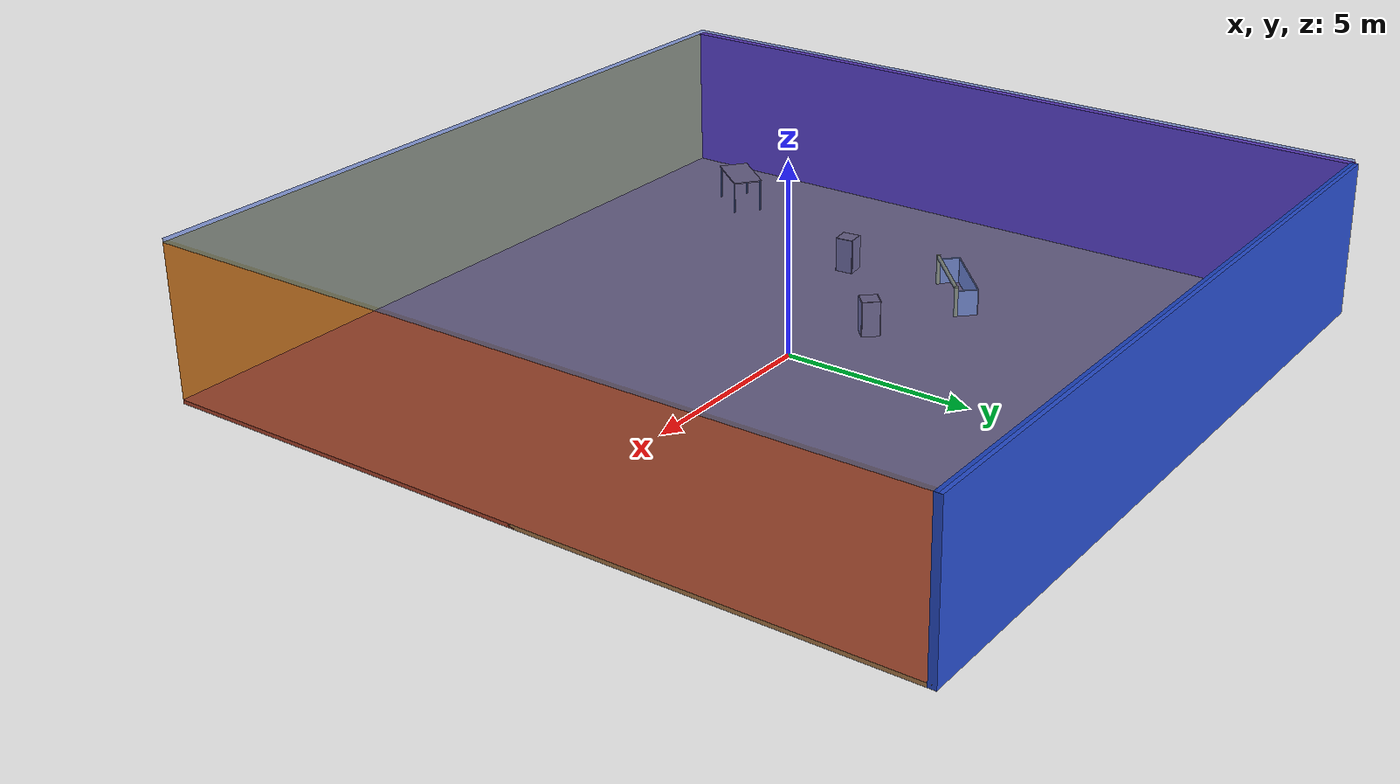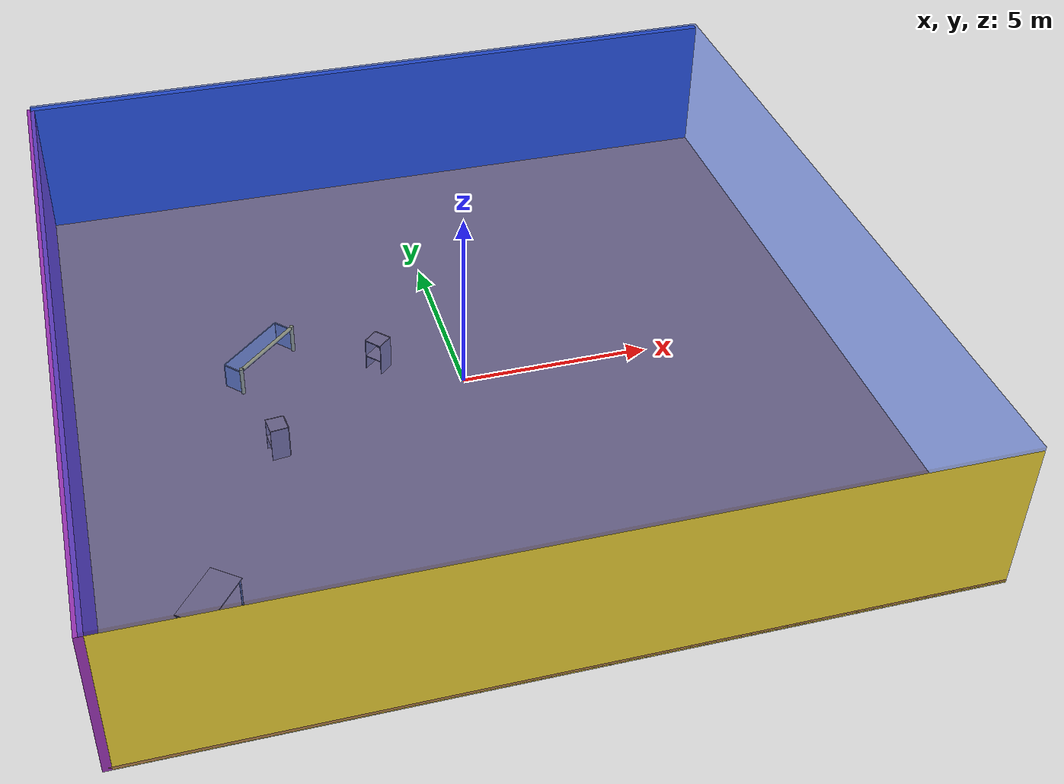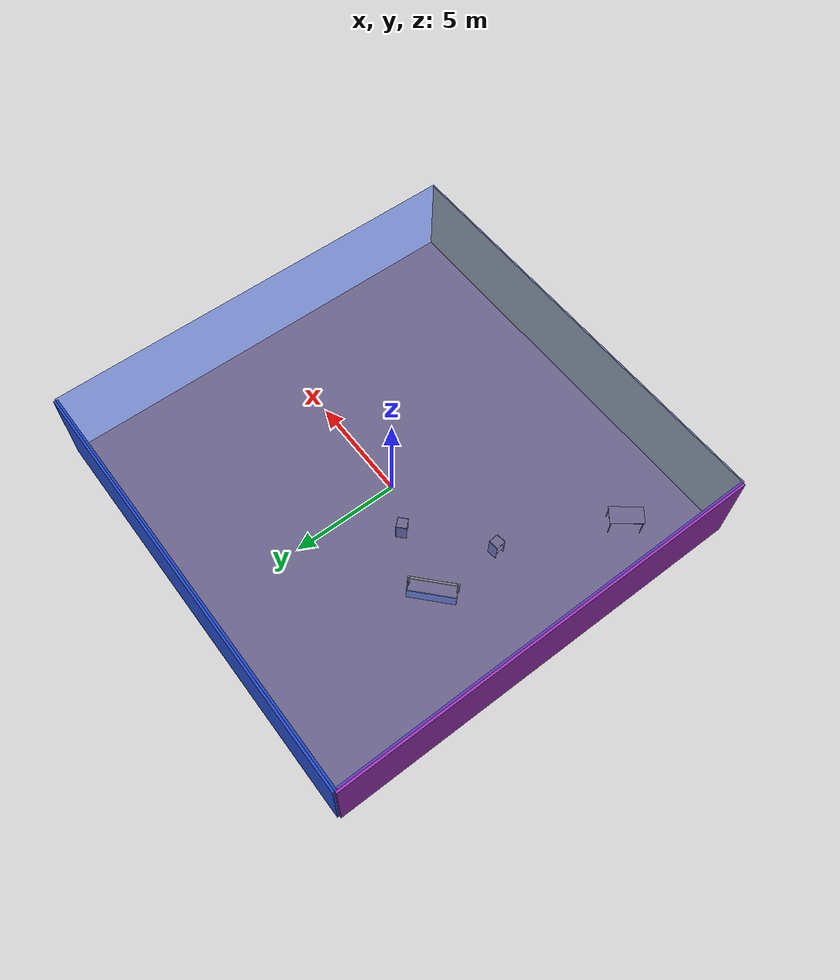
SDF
<sdf version="1.4">
 <world name="default">
  <physics type="ode">
   <max_step_size>0.001</max_step_size>
   <real_time_factor>1</real_time_factor>
   <real_time_update_rate>1000</real_time_update_rate>
   <gravity>0 0 -9.8</gravity>
  </physics>
  <scene><ambient>0.4 0.4 0.4 1</ambient><background>0.7 0.7 0.7 1</background><shadows>1</shadows></scene>
  <model name="Surrounding">
   <static>1</static>
   <link name="Ceiling">
    <collision name="Ceiling_Collision"><geometry><box><size>20 20 0.1</size></box></geometry></collision>
    <visual name="Ceiling_Visual">
     <geometry><box><size>20 20 0.1</size></box></geometry>
     <material>
      <script><uri>file://media/materials/scripts/gazebo.material</uri><name>Gazebo/BlueTransparent</name></script>
     </material>
    </visual>
    <pose>0 0 4.05 0 0 0</pose>
   </link>
   <link name="Wall_South">
    <collision name="Wall_South_Collision">
     <geometry><box><size>20 0 4</size></box></geometry>
     <pose>0 0 2 0 -0 0</pose>
    </collision>
    <visual name="Wall_South_Visual">
     <pose>0 0 2 0 -0 0</pose>
     <geometry><box><size>20 0 4</size></box></geometry>
     <material>
      <script><uri>file://media/materials/scripts/gazebo.material</uri><name>Gazebo/ZincYellow</name></script>
     </material>
    </visual>
    <velocity_decay><linear>0</linear><angular>0</angular></velocity_decay>
    <pose>0 -10 0 0 -0 0</pose>
   </link>
   <link name="Wall_East">
    <collision name="Wall_21_Collision">
     <geometry><box><size>20 0 4</size></box></geometry>
     <pose>0 0 2 0 -0 0</pose>
    </collision>
    <visual name="Wall_21_Visual">
     <pose>0 0 2 0 -0 0</pose>
     <geometry><box><size>20 0 4</size></box></geometry>
     <material>
      <script><uri>file://media/materials/scripts/gazebo.material</uri><name>Gazebo/RedTransparent</name></script>
     </material>
    </visual>
    <velocity_decay><linear>0</linear><angular>0</angular></velocity_decay>
    <pose>10 0 0 0 -0 1.5708</pose>
   </link>
   <link name="Wall_North">
    <collision name="Wall_22_Collision">
     <geometry><box><size>20 0.2 4</size></box></geometry>
     <pose>0 0 2 0 -0 0</pose>
    </collision>
    <visual name="Wall_22_Visual">
     <pose>0 0 2 0 -0 0</pose>
     <geometry><box><size>20 0.2 4</size></box></geometry>
     <material>
      <script><uri>file://media/materials/scripts/gazebo.material</uri><name>Gazebo/BlueGlow</name></script>
     </material>
    </visual>
    <velocity_decay><linear>0</linear><angular>0</angular></velocity_decay>
    <pose>0 10 0 0 -0 0</pose>
   </link>
   <link name="Wall_West">
    <collision name="Wall_23_Collision">
     <geometry><box><size>20 0.2 4</size></box></geometry>
     <pose>0 0 2 0 -0 0</pose>
    </collision>
    <visual name="Wall_23_Visual">
     <pose>0 0 2 0 -0 0</pose>
     <geometry><box><size>20 0.2 4</size></box></geometry>
     <material>
      <script><uri>file://media/materials/scripts/gazebo.material</uri><name>Gazebo/Purple</name></script>
     </material>
    </visual>
    <velocity_decay><linear>0</linear><angular>0</angular></velocity_decay>
    <pose>-10 0 0 0 0 -1.5708</pose>
   </link>
   <link name="Ground_link">
    <collision name="collision">
     <pose>0 0 .05 0 -0 0</pose>
     <geometry><box><size>20 20 0.1</size></box></geometry>
    </collision>
    <visual name="visual">
     <pose>0 0 .05 0 -0 0</pose>
     <geometry><box><size>20 20 0.1</size></box></geometry>
     <material>
      <script><uri>file://media/materials/scripts/gazebo.material</uri><name>Gazebo/WoodFloor</name></script>
     </material>
    </visual>
   </link>
   <static>1</static>
  </model>
  <spherical_coordinates>
   <surface_model>EARTH_WGS84</surface_model>
   <latitude_deg>0</latitude_deg>
   <longitude_deg>0</longitude_deg>
   <elevation>0</elevation>
   <heading_deg>0</heading_deg>
  </spherical_coordinates>
  <light name="lightball_0" type="diffuse">
   <diffuse>0.8 0.8 0.8 1</diffuse>
   <specular>0.2 0.2 0.2 1</specular>
   <attenuation>
    <range>100</range>
    <constant>0.7</constant>
    <linear>0.01</linear>
    <quadratic>0.001</quadratic>
   </attenuation>
   <direction>-0.5 0.1 -0.9</direction>
   <pose>6.97004971713 0.104550637953 1.76016843005 0 0 0</pose>
  </light>
  <light name="lightball_1" type="diffuse">
   <diffuse>0.8 0.8 0.8 1</diffuse>
   <specular>0.2 0.2 0.2 1</specular>
   <attenuation>
    <range>100</range>
    <constant>0.7</constant>
    <linear>0.01</linear>
    <quadratic>0.001</quadratic>
   </attenuation>
   <direction>-0.5 0.1 -0.9</direction>
   <pose>-3.08640535014 -1.04521309431 0.620833237216 0 0 0</pose>
  </light>
  <light name="lightball_2" type="diffuse">
   <diffuse>0.8 0.8 0.8 1</diffuse>
   <specular>0.2 0.2 0.2 1</specular>
   <attenuation>
    <range>100</range>
    <constant>0.7</constant>
    <linear>0.01</linear>
    <quadratic>0.001</quadratic>
   </attenuation>
   <direction>-0.5 0.1 -0.9</direction>
   <pose>7.09173519377 1.63186779395 2.85662191002 0 0 0</pose>
  </light>
  <light name="lightball_3" type="diffuse">
   <diffuse>0.8 0.8 0.8 1</diffuse>
   <specular>0.2 0.2 0.2 1</specular>
   <attenuation>
    <range>100</range>
    <constant>0.7</constant>
    <linear>0.01</linear>
    <quadratic>0.001</quadratic>
   </attenuation>
   <direction>-0.5 0.1 -0.9</direction>
   <pose>7.83066384528 -1.17430257665 1.09068386536 0 0 0</pose>
  </light>
  <light name="lightball_4" type="diffuse">
   <diffuse>0.8 0.8 0.8 1</diffuse>
   <specular>0.2 0.2 0.2 1</specular>
   <attenuation>
    <range>100</range>
    <constant>0.7</constant>
    <linear>0.01</linear>
    <quadratic>0.001</quadratic>
   </attenuation>
   <direction>-0.5 0.1 -0.9</direction>
   <pose>-9.59217002966 4.03362644733 2.7323422098 0 0 0</pose>
  </light>
  <light name="lightball_5" type="diffuse">
   <diffuse>0.8 0.8 0.8 1</diffuse>
   <specular>0.2 0.2 0.2 1</specular>
   <attenuation>
    <range>100</range>
    <constant>0.7</constant>
    <linear>0.01</linear>
    <quadratic>0.001</quadratic>
   </attenuation>
   <direction>-0.5 0.1 -0.9</direction>
   <pose>9.46183404939 3.4712810465 1.50822020759 0 0 0</pose>
  </light>
  <light name="lightball_6" type="diffuse">
   <diffuse>0.8 0.8 0.8 1</diffuse>
   <specular>0.2 0.2 0.2 1</specular>
   <attenuation>
    <range>100</range>
    <constant>0.7</constant>
    <linear>0.01</linear>
    <quadratic>0.001</quadratic>
   </attenuation>
   <direction>-0.5 0.1 -0.9</direction>
   <pose>6.02795566976 -9.14421639926 1.45208709581 0 0 0</pose>
  </light>
  <light name="lightball_7" type="diffuse">
   <diffuse>0.8 0.8 0.8 1</diffuse>
   <specular>0.2 0.2 0.2 1</specular>
   <attenuation>
    <range>100</range>
    <constant>0.7</constant>
    <linear>0.01</linear>
    <quadratic>0.001</quadratic>
   </attenuation>
   <direction>-0.5 0.1 -0.9</direction>
   <pose>-5.7199461428 -6.76374036459 2.74681638787 0 0 0</pose>
  </light>
  <include><uri>model://table</uri><pose>-7.46323460641 -6.801303591 0 0 0 0.905435061388</pose></include>
  <include><uri>model://cabinet</uri><pose>-5.13531449606 -1.63304742319 0 0 0 0.108600435233</pose></include>
  <include>
   <uri>model://robocup_3Dsim_goal</uri>
   <pose>-4.8772364419 1.54151759046 0 0 0 2.31860609501</pose>
  </include>
  <include><uri>model://cabinet</uri><pose>-2.04808610012 0.999147471357 0 0 0 0.74491514961</pose></include>
 </world>
</sdf>

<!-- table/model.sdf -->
<sdf version="1.5">
  <model name="table">
    <static>true</static>
    <link name="link">
      <collision name="surface">
        <pose>0 0 1.0 0 0 0</pose>
        <geometry>
          <box>
            <size>1.5 0.8 0.03</size>
          </box>
        </geometry>
        <surface>
          <friction>
            <ode>
              <mu>0.6</mu>
              <mu2>0.6</mu2>
            </ode>
          </friction>
        </surface>
      </collision>
      <visual name="visual1">
        <pose>0 0 1.0 0 0 0</pose>
        <geometry>
          <box>
            <size>1.5 0.8 0.03</size>
          </box>
        </geometry>
        <material>
          <script>
            <uri>model://media/materials/scripts/gazebo.material</uri>
            <name>Gazebo/Wood</name>
          </script>
        </material>
      </visual>
      <collision name="front_left_leg">
        <pose>0.68 0.38 0.5 0 0 0</pose>
        <geometry>
          <cylinder>
            <radius>0.02</radius>
            <length>1.0</length>
          </cylinder>
        </geometry>
      </collision>
      <visual name="front_left_leg">
        <pose>0.68 0.38 0.5 0 0 0</pose>
        <geometry>
          <cylinder>
            <radius>0.02</radius>
            <length>1.0</length>
          </cylinder>
        </geometry>
        <material>
          <script>
            <uri>model://media/materials/scripts/gazebo.material</uri>
            <name>Gazebo/Grey</name>
          </script>
        </material>
      </visual>
      <collision name="front_right_leg">
        <pose>0.68 -0.38 0.5 0 0 0</pose>
        <geometry>
          <cylinder>
            <radius>0.02</radius>
            <length>1.0</length>
          </cylinder>
        </geometry>
      </collision>
      <visual name="front_right_leg">
        <pose>0.68 -0.38 0.5 0 0 0</pose>
        <geometry>
          <cylinder>
            <radius>0.02</radius>
            <length>1.0</length>
          </cylinder>
        </geometry>
        <material>
          <script>
            <uri>model://media/materials/scripts/gazebo.material</uri>
            <name>Gazebo/Grey</name>
          </script>
        </material>
      </visual>
      <collision name="back_right_leg">
        <pose>-0.68 -0.38 0.5 0 0 0</pose>
        <geometry>
          <cylinder>
            <radius>0.02</radius>
            <length>1.0</length>
          </cylinder>
        </geometry>
      </collision>
      <visual name="back_right_leg">
        <pose>-0.68 -0.38 0.5 0 0 0</pose>
        <geometry>
          <cylinder>
            <radius>0.02</radius>
            <length>1.0</length>
          </cylinder>
        </geometry>
        <material>
          <script>
            <uri>model://media/materials/scripts/gazebo.material</uri>
            <name>Gazebo/Grey</name>
          </script>
        </material>
      </visual>
      <collision name="back_left_leg">
        <pose>-0.68 0.38 0.5 0 0 0</pose>
        <geometry>
          <cylinder>
            <radius>0.02</radius>
            <length>1.0</length>
          </cylinder>
        </geometry>
      </collision>
      <visual name="back_left_leg">
        <pose>-0.68 0.38 0.5 0 0 0</pose>
        <geometry>
          <cylinder>
            <radius>0.02</radius>
            <length>1.0</length>
          </cylinder>
        </geometry>
        <material>
          <script>
            <uri>model://media/materials/scripts/gazebo.material</uri>
            <name>Gazebo/Grey</name>
          </script>
        </material>
      </visual>
    </link>
  </model>
</sdf>

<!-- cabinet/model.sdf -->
<sdf version="1.5">
  <model name="cabinet">
    <static>true</static>
    <link name="cabinet_bottom_plate">
      <inertial>
        <pose>0 0 -1 0 0 0</pose>
        <inertia>
          <ixx>2.050000</ixx>
          <ixy>0</ixy>
          <ixz>0</ixz>
          <iyy>2.050000</iyy>
          <iyz>0</iyz>
          <izz>2.050000</izz>
        </inertia>
        <mass>25.000000</mass>
      </inertial>
      <collision name="cabinet_bottom_plate_geom">
        <pose>0 0 0.010000 0 0 0</pose>
        <geometry>
          <box>
            <size>0.450000 0.450000 0.020000</size>
          </box>
        </geometry>
      </collision>
      <visual name="cabinet_bottom_plate_geom_visual">
        <pose>0 0 0.010000 0 0 0</pose>
        <geometry>
          <box>
            <size>0.450000 0.450000 0.020000</size>
          </box>
        </geometry>
        <material>
          <script>
            <uri>model://media/materials/scripts/gazebo.material</uri>
            <name>Gazebo/Wood</name>
          </script>
        </material>
      </visual>
      <collision name="cabinet_bottom_plate_geom_cabinet_back_plate">
        <pose>0.235000 0 0.510000 0 0 0</pose>
        <geometry>
          <box>
            <size>0.020000 0.450000 1.020000</size>
          </box>
        </geometry>
      </collision>
      <visual name="cabinet_bottom_plate_geom_cabinet_back_plate_visual">
        <pose>0.235000 0 0.510000 0 0 0</pose>
        <geometry>
          <box>
            <size>0.020000 0.450000 1.020000</size>
          </box>
        </geometry>
        <material>
          <script>
            <uri>model://media/materials/scripts/gazebo.material</uri>
            <name>Gazebo/Wood</name>
          </script>
        </material>
      </visual>
      <collision name="cabinet_bottom_plate_geom_cabinet_left_plate">
        <pose>0 0.235000 0.510000 0 0 0</pose>
        <geometry>
          <box>
            <size>0.450000 0.020000 1.020000</size>
          </box>
        </geometry>
      </collision>
      <visual name="cabinet_bottom_plate_geom_cabinet_left_plate_visual">
        <pose>0 0.235000 0.510000 0 0 0</pose>
        <geometry>
          <box>
            <size>0.450000 0.020000 1.020000</size>
          </box>
        </geometry>
        <material>
          <script>
            <uri>model://media/materials/scripts/gazebo.material</uri>
            <name>Gazebo/Wood</name>
          </script>
        </material>
      </visual>
      <collision name="cabinet_bottom_plate_geom_cabinet_middle_plate">
        <pose>0 0 0.510000 0 0 0</pose>
        <geometry>
          <box>
            <size>0.450000 0.450000 0.020000</size>
          </box>
        </geometry>
      </collision>
      <visual name="cabinet_bottom_plate_geom_cabinet_middle_plate_visual">
        <pose>0 0 0.510000 0 0 0</pose>
        <geometry>
          <box>
            <size>0.450000 0.450000 0.020000</size>
          </box>
        </geometry>
        <material>
          <script>
            <uri>model://media/materials/scripts/gazebo.material</uri>
            <name>Gazebo/Wood</name>
          </script>
        </material>
      </visual>
      <collision name="cabinet_bottom_plate_geom_cabinet_right_plate">
        <pose>0 -0.235000 0.510000 0 0 0</pose>
        <geometry>
          <box>
            <size>0.450000 0.020000 1.020000</size>
          </box>
        </geometry>
      </collision>
      <visual name="cabinet_bottom_plate_geom_cabinet_right_plate_visual">
        <pose>0 -0.235000 0.510000 0 0 0</pose>
        <geometry>
          <box>
            <size>0.450000 0.020000 1.020000</size>
          </box>
        </geometry>
        <material>
          <script>
            <uri>model://media/materials/scripts/gazebo.material</uri>
            <name>Gazebo/Wood</name>
          </script>
        </material>
      </visual>
      <collision name="cabinet_bottom_plate_geom_cabinet_top_plate">
        <pose>0 0 1.010000 0 0 0</pose>
        <geometry>
          <box>
            <size>0.450000 0.450000 0.020000</size>
          </box>
        </geometry>
      </collision>
      <visual name="cabinet_bottom_plate_geom_cabinet_top_plate_visual">
        <pose>0 0 1.010000 0 0 0</pose>
        <geometry>
          <box>
            <size>0.450000 0.450000 0.020000</size>
          </box>
        </geometry>
        <material>
          <script>
            <uri>model://media/materials/scripts/gazebo.material</uri>
            <name>Gazebo/Wood</name>
          </script>
        </material>
      </visual>
    </link>
  </model>
</sdf>

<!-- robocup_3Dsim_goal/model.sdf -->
<sdf version="1.5">
  <model name="robocup_3d_goal">
    <static>true</static>
    <link name="left_post">
      <pose>0 1.05 0.45 0 0 0</pose>
      <collision name="collision">
        <geometry>
          <cylinder>
            <radius>0.05</radius>
            <length>0.9</length>
          </cylinder>
        </geometry>
      </collision>
      <visual name="visual">
        <geometry>
          <cylinder>
            <radius>0.05</radius>
            <length>0.9</length>
          </cylinder>
        </geometry>
        <material>
          <script>
            <uri>file://media/materials/scripts/gazebo.material</uri>
            <name>Gazebo/ZincYellow</name>
          </script>
        </material>
      </visual>
    </link>
    <link name="left_support_horiz_lower">
      <pose>0.30 1.05 0.01 0 0 0</pose>
      <collision name="collision">
        <geometry>
          <box>
            <size>0.50 0.02 0.02</size>
          </box>
        </geometry>
      </collision>
      <visual name="visual">
        <geometry>
          <box>
            <size>0.50 0.02 0.02</size>
          </box>
        </geometry>
        <material>
          <script>
            <uri>file://media/materials/scripts/gazebo.material</uri>
            <name>Gazebo/White</name>
          </script>
        </material>
      </visual>
    </link>
    <link name="left_support_horiz_upper">
      <pose>0.30 1.05 0.79 0 0 0</pose>
      <collision name="collision">
        <geometry>
          <box>
            <size>0.50 0.02 0.02</size>
          </box>
        </geometry>
      </collision>
      <visual name="visual">
        <geometry>
          <box>
            <size>0.50 0.02 0.02</size>
          </box>
        </geometry>
        <material>
          <script>
            <uri>file://media/materials/scripts/gazebo.material</uri>
            <name>Gazebo/White</name>
          </script>
        </material>
      </visual>
    </link>
    <link name="left_support_vertical">
      <pose>0.56 1.05 0.4 0 1.5708 0</pose>
      <collision name="collision">
        <geometry>
          <box>
            <size>0.80 0.02 0.02</size>
          </box>
        </geometry>
      </collision>
      <visual name="visual">
        <geometry>
          <box>
            <size>0.80 0.02 0.02</size>
          </box>
        </geometry>
        <material>
          <script>
            <uri>file://media/materials/scripts/gazebo.material</uri>
            <name>Gazebo/White</name>
          </script>
        </material>
      </visual>
    </link>
    <link name="right_support_horiz_lower">
      <pose>0.30 -1.05 0.01 0 0 0</pose>
      <collision name="collision">
        <geometry>
          <box>
            <size>0.50 0.02 0.02</size>
          </box>
        </geometry>
      </collision>
      <visual name="visual">
        <geometry>
          <box>
            <size>0.50 0.02 0.02</size>
          </box>
        </geometry>
        <material>
          <script>
            <uri>file://media/materials/scripts/gazebo.material</uri>
            <name>Gazebo/White</name>
          </script>
        </material>
      </visual>
    </link>
    <link name="right_support_horiz_upper">
      <pose>0.30 -1.05 0.79 0 0 0</pose>
      <collision name="collision">
        <geometry>
          <box>
            <size>0.50 0.02 0.02</size>
          </box>
        </geometry>
      </collision>
      <visual name="visual">
        <geometry>
          <box>
            <size>0.50 0.02 0.02</size>
          </box>
        </geometry>
        <material>
          <script>
            <uri>file://media/materials/scripts/gazebo.material</uri>
            <name>Gazebo/White</name>
          </script>
        </material>
      </visual>
    </link>
    <link name="right_support_vertical">
      <pose>0.56 -1.05 0.4 0 1.5708 0</pose>
      <collision name="collision">
        <geometry>
          <box>
            <size>0.80 0.02 0.02</size>
          </box>
        </geometry>
      </collision>
      <visual name="visual">
        <geometry>
          <box>
            <size>0.80 0.02 0.02</size>
          </box>
        </geometry>
        <material>
          <script>
            <uri>file://media/materials/scripts/gazebo.material</uri>
            <name>Gazebo/White</name>
          </script>
        </material>
      </visual>
    </link>
    <link name="center_support_horiz_lower">
      <pose>0.56 0 0.01 0 1.5708 0</pose>
      <collision name="collision">
        <geometry>
          <box>
            <size>0.02 2.08 0.02</size>
          </box>
        </geometry>
      </collision>
      <visual name="visual">
        <geometry>
          <box>
            <size>0.02 2.08 0.02</size>
          </box>
        </geometry>
        <material>
          <script>
            <uri>file://media/materials/scripts/gazebo.material</uri>
            <name>Gazebo/White</name>
          </script>
        </material>
      </visual>
    </link>
    <link name="center_support_horiz_upper">
      <pose>0.56 0 0.79 0 1.5708 0</pose>
      <collision name="collision">
        <geometry>
          <box>
            <size>0.02 2.08 0.02</size>
          </box>
        </geometry>
      </collision>
      <visual name="visual">
        <geometry>
          <box>
            <size>0.02 2.08 0.02</size>
          </box>
        </geometry>
        <material>
          <script>
            <uri>file://media/materials/scripts/gazebo.material</uri>
            <name>Gazebo/White</name>
          </script>
        </material>
      </visual>
    </link>
    <link name="right_post">
      <pose>0 -1.05 0.45 0 0 0</pose>
      <collision name="collision">
        <geometry>
          <cylinder>
            <radius>0.05</radius>
            <length>0.9</length>
          </cylinder>
        </geometry>
      </collision>
      <visual name="visual">
        <geometry>
          <cylinder>
            <radius>0.05</radius>
            <length>0.9</length>
          </cylinder>
        </geometry>
        <material>
          <script>
            <uri>file://media/materials/scripts/gazebo.material</uri>
            <name>Gazebo/ZincYellow</name>
          </script>
        </material>
      </visual>
    </link>
    <link name="crossbar">
      <pose>0 0 0.85 1.57 1.57 0</pose>
      <collision name="collision">
        <geometry>
          <cylinder>
            <radius>0.05</radius>
            <length>2.0</length>
          </cylinder>
        </geometry>
      </collision>
      <visual name="visual">
        <geometry>
          <cylinder>
            <radius>0.05</radius>
            <length>2.0</length>
          </cylinder>
        </geometry>
        <material>
          <script>
            <uri>file://media/materials/scripts/gazebo.material</uri>
            <name>Gazebo/ZincYellow</name>
          </script>
        </material>
      </visual>
    </link>
    <link name="center_net">
      <pose>0.56 0 0.40 0 0 0</pose>
      <collision name="collision">
        <geometry>
          <box>
            <size>0.01 2.1 0.80</size>
          </box>
        </geometry>
      </collision>
      <visual name="visual">
        <geometry>
          <box>
            <size>0.01 2.1 0.80</size>
          </box>
        </geometry>
        <material>
          <script>
            <uri>model://../model_source/models/robocup09_spl_field/materials/scripts/</uri>
            <uri>model://../model_source/models/robocup09_spl_field/materials/textures/</uri>
            <name>RoboCup/Net</name>
          </script>
        </material>
      </visual>
    </link>
    <link name="left_net">
      <pose>0.30 1.05 0.40 0 0 0</pose>
      <collision name="collision">
        <geometry>
          <box>
            <size>0.50 0.01 0.76</size>
          </box>
        </geometry>
      </collision>
      <visual name="visual">
        <geometry>
          <box>
            <size>0.50 0.01 0.76</size>
          </box>
        </geometry>
        <material>
          <script>
            <uri>model://../model_source/models/robocup09_spl_field/materials/scripts/</uri>
            <uri>model://../model_source/models/robocup09_spl_field/materials/textures/</uri>
            <name>RoboCup/Net</name>
          </script>
        </material>
      </visual>
    </link>
    <link name="right_net">
      <pose>0.30 -1.05 0.40 0 0 0</pose>
      <collision name="collision">
        <geometry>
          <box>
            <size>0.50 0.01 0.76</size>
          </box>
        </geometry>
      </collision>
      <visual name="visual">
        <geometry>
          <box>
            <size>0.50 0.01 0.76</size>
          </box>
        </geometry>
        <material>
          <script>
            <uri>model://../model_source/models/robocup09_spl_field/materials/scripts/</uri>
            <uri>model://../model_source/models/robocup09_spl_field/materials/textures/</uri>
            <name>RoboCup/Net</name>
          </script>
        </material>
      </visual>
    </link>
  </model>
</sdf>
